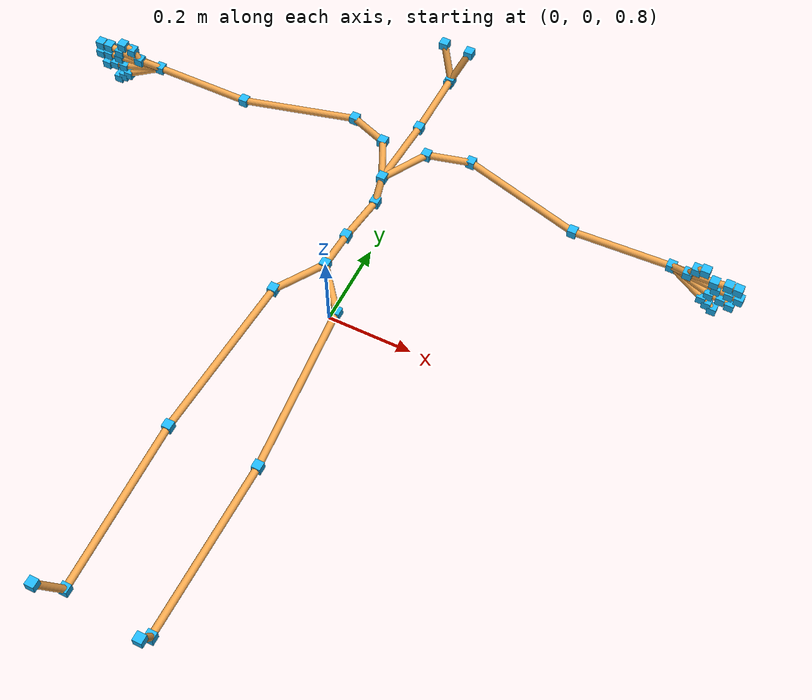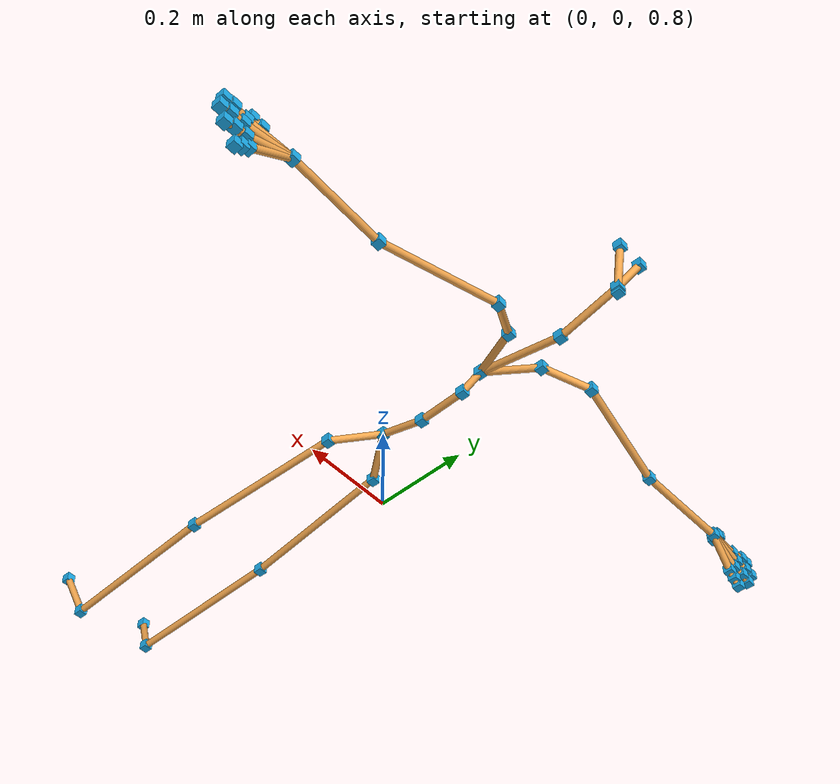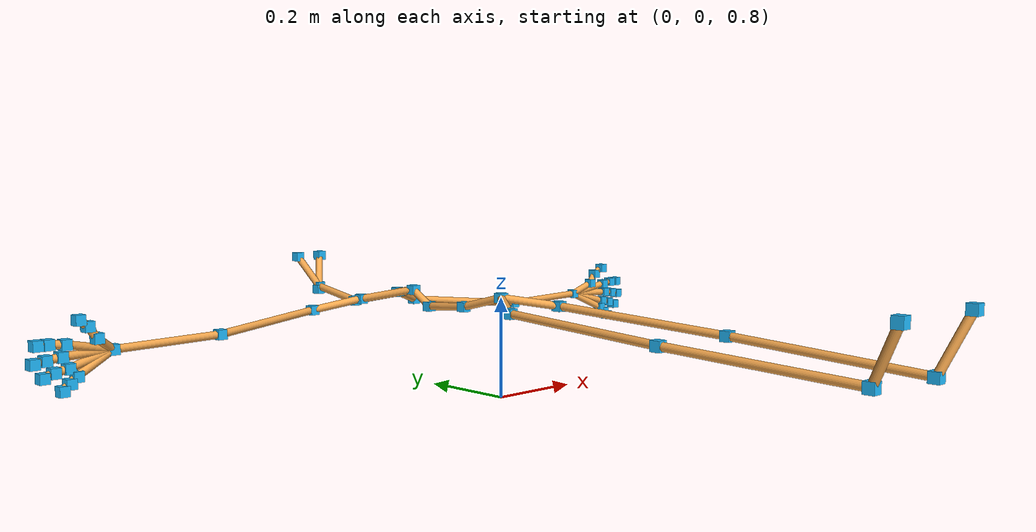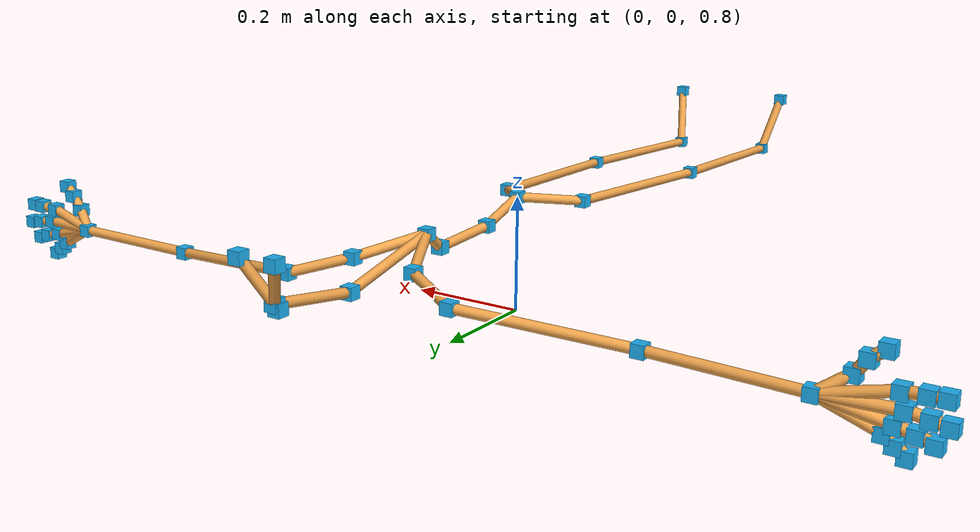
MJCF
<?xml version="1.0" encoding="UTF-8"?>
<mujoco model="smplx_female_skeleton">
  <compiler angle="radian" coordinate="local"/>
  <option timestep="0.002" gravity="0 0 -9.81"/>
  <default>
    <joint damping="1.0" armature="0.01" limited="false"/>
    <geom contype="0" conaffinity="0"/>
  </default>
  <worldbody>
    <body name="pelvis" pos="0 0 1">
      <freejoint name="root_free"/>
      <geom name="pelvis_joint" type="box" size="0.010 0.010 0.010" rgba="0.12 0.70 0.95 1"/>
      <geom name="bone_pelvis_l_hip" type="capsule" fromto="0 0 0 0.072899 -0.088478 -0.014484" size="0.008" rgba="0.95 0.65 0.30 1"/>
      <body name="l_hip" pos="0.072899 -0.088478 -0.014484">
        <joint name="l_hip_ball" type="ball"/>
        <geom name="l_hip_joint" type="box" size="0.010 0.010 0.010" rgba="0.12 0.70 0.95 1"/>
        <geom name="bone_l_hip_l_knee" type="capsule" fromto="0 0 0 0.026338 -0.376224 -0.021244" size="0.008" rgba="0.95 0.65 0.30 1"/>
        <body name="l_knee" pos="0.026338 -0.376224 -0.021244">
          <joint name="l_knee_ball" type="ball"/>
          <geom name="l_knee_joint" type="box" size="0.010 0.010 0.010" rgba="0.12 0.70 0.95 1"/>
          <geom name="bone_l_knee_l_ankle" type="capsule" fromto="0 0 0 -0.008276 -0.386951 -0.020597" size="0.008" rgba="0.95 0.65 0.30 1"/>
          <body name="l_ankle" pos="-0.008276 -0.386951 -0.020597">
            <joint name="l_ankle_ball" type="ball"/>
            <geom name="l_ankle_joint" type="box" size="0.010 0.010 0.010" rgba="0.12 0.70 0.95 1"/>
            <geom name="bone_l_ankle_l_foot" type="capsule" fromto="0 0 0 0.021548 -0.043891 0.107400" size="0.008" rgba="0.95 0.65 0.30 1"/>
            <body name="l_foot" pos="0.021548 -0.043891 0.107400">
              <joint name="l_foot_ball" type="ball"/>
              <geom name="l_foot_joint" type="box" size="0.010 0.010 0.010" rgba="0.12 0.70 0.95 1"/>
            </body>
          </body>
        </body>
      </body>
      <geom name="bone_pelvis_r_hip" type="capsule" fromto="0 0 0 -0.072195 -0.094928 -0.015813" size="0.008" rgba="0.95 0.65 0.30 1"/>
      <body name="r_hip" pos="-0.072195 -0.094928 -0.015813">
        <joint name="r_hip_ball" type="ball"/>
        <geom name="r_hip_joint" type="box" size="0.010 0.010 0.010" rgba="0.12 0.70 0.95 1"/>
        <geom name="bone_r_hip_r_knee" type="capsule" fromto="0 0 0 -0.030216 -0.372058 -0.015110" size="0.008" rgba="0.95 0.65 0.30 1"/>
        <body name="r_knee" pos="-0.030216 -0.372058 -0.015110">
          <joint name="r_knee_ball" type="ball"/>
          <geom name="r_knee_joint" type="box" size="0.010 0.010 0.010" rgba="0.12 0.70 0.95 1"/>
          <geom name="bone_r_knee_r_ankle" type="capsule" fromto="0 0 0 0.003603 -0.378386 -0.016893" size="0.008" rgba="0.95 0.65 0.30 1"/>
          <body name="r_ankle" pos="0.003603 -0.378386 -0.016893">
            <joint name="r_ankle_ball" type="ball"/>
            <geom name="r_ankle_joint" type="box" size="0.010 0.010 0.010" rgba="0.12 0.70 0.95 1"/>
            <geom name="bone_r_ankle_r_foot" type="capsule" fromto="0 0 0 -0.017403 -0.047334 0.101130" size="0.008" rgba="0.95 0.65 0.30 1"/>
            <body name="r_foot" pos="-0.017403 -0.047334 0.101130">
              <joint name="r_foot_ball" type="ball"/>
              <geom name="r_foot_joint" type="box" size="0.010 0.010 0.010" rgba="0.12 0.70 0.95 1"/>
            </body>
          </body>
        </body>
      </body>
      <geom name="bone_pelvis_spine1" type="capsule" fromto="0 0 0 -0.005460 0.102212 -0.026461" size="0.008" rgba="0.95 0.65 0.30 1"/>
      <body name="spine1" pos="-0.005460 0.102212 -0.026461">
        <joint name="spine1_ball" type="ball"/>
        <geom name="spine1_joint" type="box" size="0.010 0.010 0.010" rgba="0.12 0.70 0.95 1"/>
        <geom name="bone_spine1_spine2" type="capsule" fromto="0 0 0 0.010171 0.117166 -0.010276" size="0.008" rgba="0.95 0.65 0.30 1"/>
        <body name="spine2" pos="0.010171 0.117166 -0.010276">
          <joint name="spine2_ball" type="ball"/>
          <geom name="spine2_joint" type="box" size="0.010 0.010 0.010" rgba="0.12 0.70 0.95 1"/>
          <geom name="bone_spine2_spine3" type="capsule" fromto="0 0 0 -0.005563 0.043825 0.032045" size="0.008" rgba="0.95 0.65 0.30 1"/>
          <body name="spine3" pos="-0.005563 0.043825 0.032045">
            <joint name="spine3_ball" type="ball"/>
            <geom name="spine3_joint" type="box" size="0.010 0.010 0.010" rgba="0.12 0.70 0.95 1"/>
            <geom name="bone_spine3_neck" type="capsule" fromto="0 0 0 -0.005762 0.194076 -0.039962" size="0.008" rgba="0.95 0.65 0.30 1"/>
            <body name="neck" pos="-0.005762 0.194076 -0.039962">
              <joint name="neck_ball" type="ball"/>
              <geom name="neck_joint" type="box" size="0.010 0.010 0.010" rgba="0.12 0.70 0.95 1"/>
              <geom name="bone_neck_head" type="capsule" fromto="0 0 0 0.008775 0.146092 0.020743" size="0.008" rgba="0.95 0.65 0.30 1"/>
              <body name="head" pos="0.008775 0.146092 0.020743">
                <joint name="head_ball" type="ball"/>
                <geom name="head_joint" type="box" size="0.010 0.010 0.010" rgba="0.12 0.70 0.95 1"/>
                <geom name="bone_head_jaw" type="capsule" fromto="0 0 0 -0.003098 -0.002773 -0.006770" size="0.008" rgba="0.95 0.65 0.30 1"/>
                <body name="jaw" pos="-0.003098 -0.002773 -0.006770">
                  <joint name="jaw_ball" type="ball"/>
                  <geom name="jaw_joint" type="box" size="0.010 0.010 0.010" rgba="0.12 0.70 0.95 1"/>
                </body>
                <geom name="bone_head_l_eye" type="capsule" fromto="0 0 0 0.028241 0.034706 0.068637" size="0.008" rgba="0.95 0.65 0.30 1"/>
                <body name="l_eye" pos="0.028241 0.034706 0.068637">
                  <joint name="l_eye_ball" type="ball"/>
                  <geom name="l_eye_joint" type="box" size="0.010 0.010 0.010" rgba="0.12 0.70 0.95 1"/>
                </body>
                <geom name="bone_head_r_eye" type="capsule" fromto="0 0 0 -0.033676 0.034706 0.068636" size="0.008" rgba="0.95 0.65 0.30 1"/>
                <body name="r_eye" pos="-0.033676 0.034706 0.068636">
                  <joint name="r_eye_ball" type="ball"/>
                  <geom name="r_eye_joint" type="box" size="0.010 0.010 0.010" rgba="0.12 0.70 0.95 1"/>
                </body>
              </body>
            </body>
            <geom name="bone_spine3_l_collar" type="capsule" fromto="0 0 0 0.052238 0.114280 -0.017978" size="0.008" rgba="0.95 0.65 0.30 1"/>
            <body name="l_collar" pos="0.052238 0.114280 -0.017978">
              <joint name="l_collar_ball" type="ball"/>
              <geom name="l_collar_joint" type="box" size="0.010 0.010 0.010" rgba="0.12 0.70 0.95 1"/>
              <geom name="bone_l_collar_l_shoulder" type="capsule" fromto="0 0 0 0.088479 0.045554 -0.027642" size="0.008" rgba="0.95 0.65 0.30 1"/>
              <body name="l_shoulder" pos="0.088479 0.045554 -0.027642">
                <joint name="l_shoulder_ball" type="ball"/>
                <geom name="l_shoulder_joint" type="box" size="0.010 0.010 0.010" rgba="0.12 0.70 0.95 1"/>
                <geom name="bone_l_shoulder_l_elbow" type="capsule" fromto="0 0 0 0.272244 -0.055883 -0.027279" size="0.008" rgba="0.95 0.65 0.30 1"/>
                <body name="l_elbow" pos="0.272244 -0.055883 -0.027279">
                  <joint name="l_elbow_ball" type="ball"/>
                  <geom name="l_elbow_joint" type="box" size="0.010 0.010 0.010" rgba="0.12 0.70 0.95 1"/>
                  <geom name="bone_l_elbow_l_wrist" type="capsule" fromto="0 0 0 0.227420 0.007542 0.004085" size="0.008" rgba="0.95 0.65 0.30 1"/>
                  <body name="l_wrist" pos="0.227420 0.007542 0.004085">
                    <joint name="l_wrist_ball" type="ball"/>
                    <geom name="l_wrist_joint" type="box" size="0.010 0.010 0.010" rgba="0.12 0.70 0.95 1"/>
                    <geom name="bone_l_wrist_l_index1" type="capsule" fromto="0 0 0 0.099976 -0.014505 0.019801" size="0.008" rgba="0.95 0.65 0.30 1"/>
                    <body name="l_index1" pos="0.099976 -0.014505 0.019801">
                      <joint name="l_index1_ball" type="ball"/>
                      <geom name="l_index1_joint" type="box" size="0.010 0.010 0.010" rgba="0.12 0.70 0.95 1"/>
                      <geom name="bone_l_index1_l_index2" type="capsule" fromto="0 0 0 0.030929 0.002719 0.002658" size="0.008" rgba="0.95 0.65 0.30 1"/>
                      <body name="l_index2" pos="0.030929 0.002719 0.002658">
                        <joint name="l_index2_ball" type="ball"/>
                        <geom name="l_index2_joint" type="box" size="0.010 0.010 0.010" rgba="0.12 0.70 0.95 1"/>
                        <geom name="bone_l_index2_l_index3" type="capsule" fromto="0 0 0 0.021905 -0.001364 0.000398" size="0.008" rgba="0.95 0.65 0.30 1"/>
                        <body name="l_index3" pos="0.021905 -0.001364 0.000398">
                          <joint name="l_index3_ball" type="ball"/>
                          <geom name="l_index3_joint" type="box" size="0.010 0.010 0.010" rgba="0.12 0.70 0.95 1"/>
                        </body>
                      </body>
                    </body>
                    <geom name="bone_l_wrist_l_middle1" type="capsule" fromto="0 0 0 0.106800 -0.012180 -0.002249" size="0.008" rgba="0.95 0.65 0.30 1"/>
                    <body name="l_middle1" pos="0.106800 -0.012180 -0.002249">
                      <joint name="l_middle1_ball" type="ball"/>
                      <geom name="l_middle1_joint" type="box" size="0.010 0.010 0.010" rgba="0.12 0.70 0.95 1"/>
                      <geom name="bone_l_middle1_l_middle2" type="capsule" fromto="0 0 0 0.029370 0.001363 -0.003804" size="0.008" rgba="0.95 0.65 0.30 1"/>
                      <body name="l_middle2" pos="0.029370 0.001363 -0.003804">
                        <joint name="l_middle2_ball" type="ball"/>
                        <geom name="l_middle2_joint" type="box" size="0.010 0.010 0.010" rgba="0.12 0.70 0.95 1"/>
                        <geom name="bone_l_middle2_l_middle3" type="capsule" fromto="0 0 0 0.022789 -0.000545 -0.003685" size="0.008" rgba="0.95 0.65 0.30 1"/>
                        <body name="l_middle3" pos="0.022789 -0.000545 -0.003685">
                          <joint name="l_middle3_ball" type="ball"/>
                          <geom name="l_middle3_joint" type="box" size="0.010 0.010 0.010" rgba="0.12 0.70 0.95 1"/>
                        </body>
                      </body>
                    </body>
                    <geom name="bone_l_wrist_l_pinky1" type="capsule" fromto="0 0 0 0.082059 -0.019658 -0.039619" size="0.008" rgba="0.95 0.65 0.30 1"/>
                    <body name="l_pinky1" pos="0.082059 -0.019658 -0.039619">
                      <joint name="l_pinky1_ball" type="ball"/>
                      <geom name="l_pinky1_joint" type="box" size="0.010 0.010 0.010" rgba="0.12 0.70 0.95 1"/>
                      <geom name="bone_l_pinky1_l_pinky2" type="capsule" fromto="0 0 0 0.014282 -0.000408 -0.011712" size="0.008" rgba="0.95 0.65 0.30 1"/>
                      <body name="l_pinky2" pos="0.014282 -0.000408 -0.011712">
                        <joint name="l_pinky2_ball" type="ball"/>
                        <geom name="l_pinky2_joint" type="box" size="0.010 0.010 0.010" rgba="0.12 0.70 0.95 1"/>
                        <geom name="bone_l_pinky2_l_pinky3" type="capsule" fromto="0 0 0 0.014562 -0.000865 -0.011355" size="0.008" rgba="0.95 0.65 0.30 1"/>
                        <body name="l_pinky3" pos="0.014562 -0.000865 -0.011355">
                          <joint name="l_pinky3_ball" type="ball"/>
                          <geom name="l_pinky3_joint" type="box" size="0.010 0.010 0.010" rgba="0.12 0.70 0.95 1"/>
                        </body>
                      </body>
                    </body>
                    <geom name="bone_l_wrist_l_ring1" type="capsule" fromto="0 0 0 0.095020 -0.014764 -0.024294" size="0.008" rgba="0.95 0.65 0.30 1"/>
                    <body name="l_ring1" pos="0.095020 -0.014764 -0.024294">
                      <joint name="l_ring1_ball" type="ball"/>
                      <geom name="l_ring1_joint" type="box" size="0.010 0.010 0.010" rgba="0.12 0.70 0.95 1"/>
                      <geom name="bone_l_ring1_l_ring2" type="capsule" fromto="0 0 0 0.026729 0.001656 -0.005247" size="0.008" rgba="0.95 0.65 0.30 1"/>
                      <body name="l_ring2" pos="0.026729 0.001656 -0.005247">
                        <joint name="l_ring2_ball" type="ball"/>
                        <geom name="l_ring2_joint" type="box" size="0.010 0.010 0.010" rgba="0.12 0.70 0.95 1"/>
                        <geom name="bone_l_ring2_l_ring3" type="capsule" fromto="0 0 0 0.021862 -0.000935 -0.006978" size="0.008" rgba="0.95 0.65 0.30 1"/>
                        <body name="l_ring3" pos="0.021862 -0.000935 -0.006978">
                          <joint name="l_ring3_ball" type="ball"/>
                          <geom name="l_ring3_joint" type="box" size="0.010 0.010 0.010" rgba="0.12 0.70 0.95 1"/>
                        </body>
                      </body>
                    </body>
                    <geom name="bone_l_wrist_l_thumb1" type="capsule" fromto="0 0 0 0.041607 -0.021897 0.025897" size="0.008" rgba="0.95 0.65 0.30 1"/>
                    <body name="l_thumb1" pos="0.041607 -0.021897 0.025897">
                      <joint name="l_thumb1_ball" type="ball"/>
                      <geom name="l_thumb1_joint" type="box" size="0.010 0.010 0.010" rgba="0.12 0.70 0.95 1"/>
                      <geom name="bone_l_thumb1_l_thumb2" type="capsule" fromto="0 0 0 0.016685 0.000733 0.023068" size="0.008" rgba="0.95 0.65 0.30 1"/>
                      <body name="l_thumb2" pos="0.016685 0.000733 0.023068">
                        <joint name="l_thumb2_ball" type="ball"/>
                        <geom name="l_thumb2_joint" type="box" size="0.010 0.010 0.010" rgba="0.12 0.70 0.95 1"/>
                        <geom name="bone_l_thumb2_l_thumb3" type="capsule" fromto="0 0 0 0.019785 -0.005621 0.013988" size="0.008" rgba="0.95 0.65 0.30 1"/>
                        <body name="l_thumb3" pos="0.019785 -0.005621 0.013988">
                          <joint name="l_thumb3_ball" type="ball"/>
                          <geom name="l_thumb3_joint" type="box" size="0.010 0.010 0.010" rgba="0.12 0.70 0.95 1"/>
                        </body>
                      </body>
                    </body>
                  </body>
                </body>
              </body>
            </body>
            <geom name="bone_spine3_r_collar" type="capsule" fromto="0 0 0 -0.054698 0.110255 -0.024477" size="0.008" rgba="0.95 0.65 0.30 1"/>
            <body name="r_collar" pos="-0.054698 0.110255 -0.024477">
              <joint name="r_collar_ball" type="ball"/>
              <geom name="r_collar_joint" type="box" size="0.010 0.010 0.010" rgba="0.12 0.70 0.95 1"/>
              <geom name="bone_r_collar_r_shoulder" type="capsule" fromto="0 0 0 -0.095603 0.047853 -0.020766" size="0.008" rgba="0.95 0.65 0.30 1"/>
              <body name="r_shoulder" pos="-0.095603 0.047853 -0.020766">
                <joint name="r_shoulder_ball" type="ball"/>
                <geom name="r_shoulder_joint" type="box" size="0.010 0.010 0.010" rgba="0.12 0.70 0.95 1"/>
                <geom name="bone_r_shoulder_r_elbow" type="capsule" fromto="0 0 0 -0.262557 -0.050778 -0.020299" size="0.008" rgba="0.95 0.65 0.30 1"/>
                <body name="r_elbow" pos="-0.262557 -0.050778 -0.020299">
                  <joint name="r_elbow_ball" type="ball"/>
                  <geom name="r_elbow_joint" type="box" size="0.010 0.010 0.010" rgba="0.12 0.70 0.95 1"/>
                  <geom name="bone_r_elbow_r_wrist" type="capsule" fromto="0 0 0 -0.228115 0.003354 -0.004756" size="0.008" rgba="0.95 0.65 0.30 1"/>
                  <body name="r_wrist" pos="-0.228115 0.003354 -0.004756">
                    <joint name="r_wrist_ball" type="ball"/>
                    <geom name="r_wrist_joint" type="box" size="0.010 0.010 0.010" rgba="0.12 0.70 0.95 1"/>
                    <geom name="bone_r_wrist_r_index1" type="capsule" fromto="0 0 0 -0.098793 -0.013693 0.021286" size="0.008" rgba="0.95 0.65 0.30 1"/>
                    <body name="r_index1" pos="-0.098793 -0.013693 0.021286">
                      <joint name="r_index1_ball" type="ball"/>
                      <geom name="r_index1_joint" type="box" size="0.010 0.010 0.010" rgba="0.12 0.70 0.95 1"/>
                      <geom name="bone_r_index1_r_index2" type="capsule" fromto="0 0 0 -0.030929 0.002718 0.002657" size="0.008" rgba="0.95 0.65 0.30 1"/>
                      <body name="r_index2" pos="-0.030929 0.002718 0.002657">
                        <joint name="r_index2_ball" type="ball"/>
                        <geom name="r_index2_joint" type="box" size="0.010 0.010 0.010" rgba="0.12 0.70 0.95 1"/>
                        <geom name="bone_r_index2_r_index3" type="capsule" fromto="0 0 0 -0.021904 -0.001365 0.000398" size="0.008" rgba="0.95 0.65 0.30 1"/>
                        <body name="r_index3" pos="-0.021904 -0.001365 0.000398">
                          <joint name="r_index3_ball" type="ball"/>
                          <geom name="r_index3_joint" type="box" size="0.010 0.010 0.010" rgba="0.12 0.70 0.95 1"/>
                        </body>
                      </body>
                    </body>
                    <geom name="bone_r_wrist_r_middle1" type="capsule" fromto="0 0 0 -0.105616 -0.011369 -0.000766" size="0.008" rgba="0.95 0.65 0.30 1"/>
                    <body name="r_middle1" pos="-0.105616 -0.011369 -0.000766">
                      <joint name="r_middle1_ball" type="ball"/>
                      <geom name="r_middle1_joint" type="box" size="0.010 0.010 0.010" rgba="0.12 0.70 0.95 1"/>
                      <geom name="bone_r_middle1_r_middle2" type="capsule" fromto="0 0 0 -0.029370 0.001363 -0.003804" size="0.008" rgba="0.95 0.65 0.30 1"/>
                      <body name="r_middle2" pos="-0.029370 0.001363 -0.003804">
                        <joint name="r_middle2_ball" type="ball"/>
                        <geom name="r_middle2_joint" type="box" size="0.010 0.010 0.010" rgba="0.12 0.70 0.95 1"/>
                        <geom name="bone_r_middle2_r_middle3" type="capsule" fromto="0 0 0 -0.022789 -0.000546 -0.003685" size="0.008" rgba="0.95 0.65 0.30 1"/>
                        <body name="r_middle3" pos="-0.022789 -0.000546 -0.003685">
                          <joint name="r_middle3_ball" type="ball"/>
                          <geom name="r_middle3_joint" type="box" size="0.010 0.010 0.010" rgba="0.12 0.70 0.95 1"/>
                        </body>
                      </body>
                    </body>
                    <geom name="bone_r_wrist_r_pinky1" type="capsule" fromto="0 0 0 -0.080877 -0.018850 -0.038137" size="0.008" rgba="0.95 0.65 0.30 1"/>
                    <body name="r_pinky1" pos="-0.080877 -0.018850 -0.038137">
                      <joint name="r_pinky1_ball" type="ball"/>
                      <geom name="r_pinky1_joint" type="box" size="0.010 0.010 0.010" rgba="0.12 0.70 0.95 1"/>
                      <geom name="bone_r_pinky1_r_pinky2" type="capsule" fromto="0 0 0 -0.014282 -0.000407 -0.011711" size="0.008" rgba="0.95 0.65 0.30 1"/>
                      <body name="r_pinky2" pos="-0.014282 -0.000407 -0.011711">
                        <joint name="r_pinky2_ball" type="ball"/>
                        <geom name="r_pinky2_joint" type="box" size="0.010 0.010 0.010" rgba="0.12 0.70 0.95 1"/>
                        <geom name="bone_r_pinky2_r_pinky3" type="capsule" fromto="0 0 0 -0.014561 -0.000864 -0.011356" size="0.008" rgba="0.95 0.65 0.30 1"/>
                        <body name="r_pinky3" pos="-0.014561 -0.000864 -0.011356">
                          <joint name="r_pinky3_ball" type="ball"/>
                          <geom name="r_pinky3_joint" type="box" size="0.010 0.010 0.010" rgba="0.12 0.70 0.95 1"/>
                        </body>
                      </body>
                    </body>
                    <geom name="bone_r_wrist_r_ring1" type="capsule" fromto="0 0 0 -0.093837 -0.013954 -0.022812" size="0.008" rgba="0.95 0.65 0.30 1"/>
                    <body name="r_ring1" pos="-0.093837 -0.013954 -0.022812">
                      <joint name="r_ring1_ball" type="ball"/>
                      <geom name="r_ring1_joint" type="box" size="0.010 0.010 0.010" rgba="0.12 0.70 0.95 1"/>
                      <geom name="bone_r_ring1_r_ring2" type="capsule" fromto="0 0 0 -0.026728 0.001657 -0.005248" size="0.008" rgba="0.95 0.65 0.30 1"/>
                      <body name="r_ring2" pos="-0.026728 0.001657 -0.005248">
                        <joint name="r_ring2_ball" type="ball"/>
                        <geom name="r_ring2_joint" type="box" size="0.010 0.010 0.010" rgba="0.12 0.70 0.95 1"/>
                        <geom name="bone_r_ring2_r_ring3" type="capsule" fromto="0 0 0 -0.021861 -0.000935 -0.006978" size="0.008" rgba="0.95 0.65 0.30 1"/>
                        <body name="r_ring3" pos="-0.021861 -0.000935 -0.006978">
                          <joint name="r_ring3_ball" type="ball"/>
                          <geom name="r_ring3_joint" type="box" size="0.010 0.010 0.010" rgba="0.12 0.70 0.95 1"/>
                        </body>
                      </body>
                    </body>
                    <geom name="bone_r_wrist_r_thumb1" type="capsule" fromto="0 0 0 -0.040421 -0.021088 0.027382" size="0.008" rgba="0.95 0.65 0.30 1"/>
                    <body name="r_thumb1" pos="-0.040421 -0.021088 0.027382">
                      <joint name="r_thumb1_ball" type="ball"/>
                      <geom name="r_thumb1_joint" type="box" size="0.010 0.010 0.010" rgba="0.12 0.70 0.95 1"/>
                      <geom name="bone_r_thumb1_r_thumb2" type="capsule" fromto="0 0 0 -0.016685 0.000734 0.023068" size="0.008" rgba="0.95 0.65 0.30 1"/>
                      <body name="r_thumb2" pos="-0.016685 0.000734 0.023068">
                        <joint name="r_thumb2_ball" type="ball"/>
                        <geom name="r_thumb2_joint" type="box" size="0.010 0.010 0.010" rgba="0.12 0.70 0.95 1"/>
                        <geom name="bone_r_thumb2_r_thumb3" type="capsule" fromto="0 0 0 -0.019787 -0.005621 0.013986" size="0.008" rgba="0.95 0.65 0.30 1"/>
                        <body name="r_thumb3" pos="-0.019787 -0.005621 0.013986">
                          <joint name="r_thumb3_ball" type="ball"/>
                          <geom name="r_thumb3_joint" type="box" size="0.010 0.010 0.010" rgba="0.12 0.70 0.95 1"/>
                        </body>
                      </body>
                    </body>
                  </body>
                </body>
              </body>
            </body>
          </body>
        </body>
      </body>
    </body>
  </worldbody>
</mujoco>
